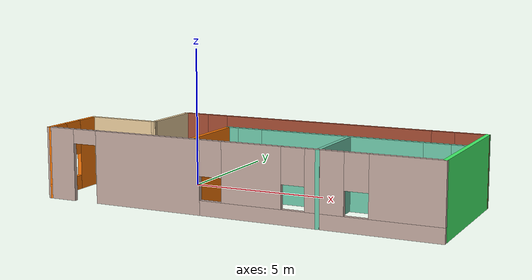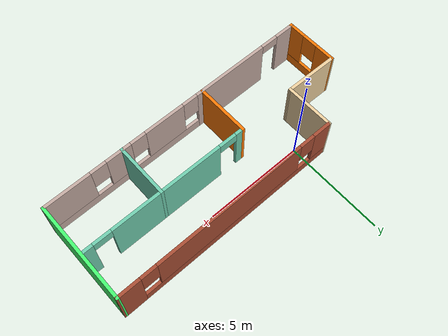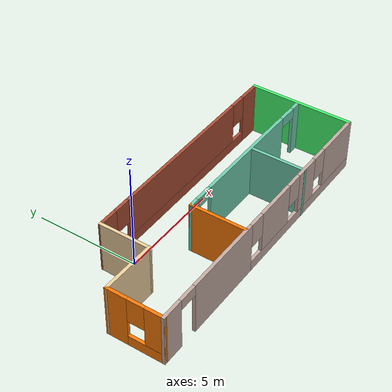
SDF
<?xml version='1.0'?>
<sdf version='1.6'>
  <model name='New'>
    <pose frame=''>3.48669 -1.57847 0 0 -0 0</pose>
    <link name='Wall_0'>
      <pose frame=''>-6.99669 -1.17687 0 0 0 -1.5708</pose>
      <visual name='Wall_0_Visual_0'>
        <pose frame=''>-0.859523 0 1.25 0 -0 0</pose>
        <geometry>
          <box>
            <size>1.03095 0.15 2.5</size>
          </box>
        </geometry>
        <material>
          <script>
            <uri>file://media/materials/scripts/gazebo.material</uri>
            <name>Gazebo/Grey</name>
          </script>
          <ambient>0.996078 0.47451 0.0196078 1</ambient>
        </material>
        <meta>
          <layer>0</layer>
        </meta>
      </visual>
      <collision name='Wall_0_Collision_0'>
        <geometry>
          <box>
            <size>1.03095 0.15 2.5</size>
          </box>
        </geometry>
        <pose frame=''>-0.859523 0 1.25 0 -0 0</pose>
      </collision>
      <visual name='Wall_0_Visual_1'>
        <pose frame=''>0.515477 0 0.25 0 -0 0</pose>
        <geometry>
          <box>
            <size>1.71905 0.15 0.5</size>
          </box>
        </geometry>
        <material>
          <script>
            <uri>file://media/materials/scripts/gazebo.material</uri>
            <name>Gazebo/Grey</name>
          </script>
          <ambient>0.996078 0.47451 0.0196078 1</ambient>
        </material>
        <meta>
          <layer>0</layer>
        </meta>
      </visual>
      <collision name='Wall_0_Collision_1'>
        <geometry>
          <box>
            <size>1.71905 0.15 0.5</size>
          </box>
        </geometry>
        <pose frame=''>0.515477 0 0.25 0 -0 0</pose>
      </collision>
      <visual name='Wall_0_Visual_2'>
        <pose frame=''>0.915477 0 1.5 0 -0 0</pose>
        <geometry>
          <box>
            <size>0.919047 0.15 2</size>
          </box>
        </geometry>
        <material>
          <script>
            <uri>file://media/materials/scripts/gazebo.material</uri>
            <name>Gazebo/Grey</name>
          </script>
          <ambient>0.996078 0.47451 0.0196078 1</ambient>
        </material>
        <meta>
          <layer>0</layer>
        </meta>
      </visual>
      <collision name='Wall_0_Collision_2'>
        <geometry>
          <box>
            <size>0.919047 0.15 2</size>
          </box>
        </geometry>
        <pose frame=''>0.915477 0 1.5 0 -0 0</pose>
      </collision>
      <visual name='Wall_0_Visual_3'>
        <pose frame=''>0.055953 0 1.9 0 -0 0</pose>
        <geometry>
          <box>
            <size>0.8 0.15 1.2</size>
          </box>
        </geometry>
        <material>
          <script>
            <uri>file://media/materials/scripts/gazebo.material</uri>
            <name>Gazebo/Grey</name>
          </script>
          <ambient>0.996078 0.47451 0.0196078 1</ambient>
        </material>
        <meta>
          <layer>0</layer>
        </meta>
      </visual>
      <collision name='Wall_0_Collision_3'>
        <geometry>
          <box>
            <size>0.8 0.15 1.2</size>
          </box>
        </geometry>
        <pose frame=''>0.055953 0 1.9 0 -0 0</pose>
      </collision>
    </link>
    <link name='Wall_1'>
      <pose frame=''>4e-06 -2.4337 0 0 -0 0.00617</pose>
      <visual name='Wall_1_Visual_0'>
        <pose frame=''>-6.52931 0 1.25 0 -0 0</pose>
        <geometry>
          <box>
            <size>1.08587 0.15 2.5</size>
          </box>
        </geometry>
        <material>
          <script>
            <uri>file://media/materials/scripts/gazebo.material</uri>
            <name>Gazebo/Grey</name>
          </script>
          <ambient>0.760784 0.662745 0.627451 1</ambient>
        </material>
        <meta>
          <layer>0</layer>
        </meta>
      </visual>
      <collision name='Wall_1_Collision_0'>
        <geometry>
          <box>
            <size>1.08587 0.15 2.5</size>
          </box>
        </geometry>
        <pose frame=''>-6.52931 0 1.25 0 -0 0</pose>
      </collision>
      <visual name='Wall_1_Visual_1'>
        <pose frame=''>-3.09631 0 1.25 0 -0 0</pose>
        <geometry>
          <box>
            <size>3.98014 0.15 2.5</size>
          </box>
        </geometry>
        <material>
          <script>
            <uri>file://media/materials/scripts/gazebo.material</uri>
            <name>Gazebo/Grey</name>
          </script>
          <ambient>0.760784 0.662745 0.627451 1</ambient>
        </material>
        <meta>
          <layer>0</layer>
        </meta>
      </visual>
      <collision name='Wall_1_Collision_1'>
        <geometry>
          <box>
            <size>3.98014 0.15 2.5</size>
          </box>
        </geometry>
        <pose frame=''>-3.09631 0 1.25 0 -0 0</pose>
      </collision>
      <visual name='Wall_1_Visual_2'>
        <pose frame=''>2.983 0 0.25 0 -0 0</pose>
        <geometry>
          <box>
            <size>8.17848 0.15 0.5</size>
          </box>
        </geometry>
        <material>
          <script>
            <uri>file://media/materials/scripts/gazebo.material</uri>
            <name>Gazebo/Grey</name>
          </script>
          <ambient>0.760784 0.662745 0.627451 1</ambient>
        </material>
        <meta>
          <layer>0</layer>
        </meta>
      </visual>
      <collision name='Wall_1_Collision_2'>
        <geometry>
          <box>
            <size>8.17848 0.15 0.5</size>
          </box>
        </geometry>
        <pose frame=''>2.983 0 0.25 0 -0 0</pose>
      </collision>
      <visual name='Wall_1_Visual_3'>
        <pose frame=''>0.739938 0 1.5 0 -0 0</pose>
        <geometry>
          <box>
            <size>2.09235 0.15 2</size>
          </box>
        </geometry>
        <material>
          <script>
            <uri>file://media/materials/scripts/gazebo.material</uri>
            <name>Gazebo/Grey</name>
          </script>
          <ambient>0.760784 0.662745 0.627451 1</ambient>
        </material>
        <meta>
          <layer>0</layer>
        </meta>
      </visual>
      <collision name='Wall_1_Collision_3'>
        <geometry>
          <box>
            <size>2.09235 0.15 2</size>
          </box>
        </geometry>
        <pose frame=''>0.739938 0 1.5 0 -0 0</pose>
      </collision>
      <visual name='Wall_1_Visual_4'>
        <pose frame=''>3.23501 0 1.5 0 -0 0</pose>
        <geometry>
          <box>
            <size>1.29778 0.15 2</size>
          </box>
        </geometry>
        <material>
          <script>
            <uri>file://media/materials/scripts/gazebo.material</uri>
            <name>Gazebo/Grey</name>
          </script>
          <ambient>0.760784 0.662745 0.627451 1</ambient>
        </material>
        <meta>
          <layer>0</layer>
        </meta>
      </visual>
      <collision name='Wall_1_Collision_4'>
        <geometry>
          <box>
            <size>1.29778 0.15 2</size>
          </box>
        </geometry>
        <pose frame=''>3.23501 0 1.5 0 -0 0</pose>
      </collision>
      <visual name='Wall_1_Visual_5'>
        <pose frame=''>5.87807 0 1.5 0 -0 0</pose>
        <geometry>
          <box>
            <size>2.38834 0.15 2</size>
          </box>
        </geometry>
        <material>
          <script>
            <uri>file://media/materials/scripts/gazebo.material</uri>
            <name>Gazebo/Grey</name>
          </script>
          <ambient>0.760784 0.662745 0.627451 1</ambient>
        </material>
        <meta>
          <layer>0</layer>
        </meta>
      </visual>
      <collision name='Wall_1_Collision_5'>
        <geometry>
          <box>
            <size>2.38834 0.15 2</size>
          </box>
        </geometry>
        <pose frame=''>5.87807 0 1.5 0 -0 0</pose>
      </collision>
      <visual name='Wall_1_Visual_6'>
        <pose frame=''>-0.70624 0 1.9 0 -0 0</pose>
        <geometry>
          <box>
            <size>0.8 0.15 1.2</size>
          </box>
        </geometry>
        <material>
          <script>
            <uri>file://media/materials/scripts/gazebo.material</uri>
            <name>Gazebo/Grey</name>
          </script>
          <ambient>0.760784 0.662745 0.627451 1</ambient>
        </material>
        <meta>
          <layer>0</layer>
        </meta>
      </visual>
      <collision name='Wall_1_Collision_6'>
        <geometry>
          <box>
            <size>0.8 0.15 1.2</size>
          </box>
        </geometry>
        <pose frame=''>-0.70624 0 1.9 0 -0 0</pose>
      </collision>
      <visual name='Wall_1_Visual_7'>
        <pose frame=''>2.18612 0 1.9 0 -0 0</pose>
        <geometry>
          <box>
            <size>0.8 0.15 1.2</size>
          </box>
        </geometry>
        <material>
          <script>
            <uri>file://media/materials/scripts/gazebo.material</uri>
            <name>Gazebo/Grey</name>
          </script>
          <ambient>0.760784 0.662745 0.627451 1</ambient>
        </material>
        <meta>
          <layer>0</layer>
        </meta>
      </visual>
      <collision name='Wall_1_Collision_7'>
        <geometry>
          <box>
            <size>0.8 0.15 1.2</size>
          </box>
        </geometry>
        <pose frame=''>2.18612 0 1.9 0 -0 0</pose>
      </collision>
      <visual name='Wall_1_Visual_8'>
        <pose frame=''>4.2839 0 1.9 0 -0 0</pose>
        <geometry>
          <box>
            <size>0.8 0.15 1.2</size>
          </box>
        </geometry>
        <material>
          <script>
            <uri>file://media/materials/scripts/gazebo.material</uri>
            <name>Gazebo/Grey</name>
          </script>
          <ambient>0.760784 0.662745 0.627451 1</ambient>
        </material>
        <meta>
          <layer>0</layer>
        </meta>
      </visual>
      <collision name='Wall_1_Collision_8'>
        <geometry>
          <box>
            <size>0.8 0.15 1.2</size>
          </box>
        </geometry>
        <pose frame=''>4.2839 0 1.9 0 -0 0</pose>
      </collision>
      <visual name='Wall_1_Visual_9'>
        <pose frame=''>-5.53637 0 2.25 0 -0 0</pose>
        <geometry>
          <box>
            <size>0.9 0.15 0.5</size>
          </box>
        </geometry>
        <material>
          <script>
            <uri>file://media/materials/scripts/gazebo.material</uri>
            <name>Gazebo/Grey</name>
          </script>
          <ambient>0.760784 0.662745 0.627451 1</ambient>
        </material>
        <meta>
          <layer>0</layer>
        </meta>
      </visual>
      <collision name='Wall_1_Collision_9'>
        <geometry>
          <box>
            <size>0.9 0.15 0.5</size>
          </box>
        </geometry>
        <pose frame=''>-5.53637 0 2.25 0 -0 0</pose>
      </collision>
    </link>
    <link name='Wall_11'>
      <collision name='Wall_11_Collision'>
        <geometry>
          <box>
            <size>2.75 0.15 2.5</size>
          </box>
        </geometry>
        <pose frame=''>0 0 1.25 0 -0 0</pose>
      </collision>
      <visual name='Wall_11_Visual'>
        <pose frame=''>0 0 1.25 0 -0 0</pose>
        <geometry>
          <box>
            <size>2.75 0.15 2.5</size>
          </box>
        </geometry>
        <material>
          <script>
            <uri>file://media/materials/scripts/gazebo.material</uri>
            <name>Gazebo/Grey</name>
          </script>
          <ambient>0.435294 0.796078 0.67451 1</ambient>
        </material>
        <meta>
          <layer>0</layer>
        </meta>
      </visual>
      <pose frame=''>3.01459 -1.12215 0 0 0 -1.5708</pose>
    </link>
    <link name='Wall_2'>
      <collision name='Wall_2_Collision'>
        <geometry>
          <box>
            <size>5 0.15 2.5</size>
          </box>
        </geometry>
        <pose frame=''>0 0 1.25 0 -0 0</pose>
      </collision>
      <visual name='Wall_2_Visual'>
        <pose frame=''>0 0 1.25 0 -0 0</pose>
        <geometry>
          <box>
            <size>5 0.15 2.5</size>
          </box>
        </geometry>
        <material>
          <script>
            <uri>file://media/materials/scripts/gazebo.material</uri>
            <name>Gazebo/Grey</name>
          </script>
          <ambient>0.270588 1 0.439216 1</ambient>
        </material>
        <meta>
          <layer>0</layer>
        </meta>
      </visual>
      <pose frame=''>6.9967 0.052103 0 0 -0 1.5708</pose>
    </link>
    <link name='Wall_3'>
      <pose frame=''>1.3 2.45979 0 0 0 -3.13855</pose>
      <visual name='Wall_3_Visual_0'>
        <pose frame=''>-5.18658 0 1.25 0 -0 0</pose>
        <geometry>
          <box>
            <size>1.17029 0.15 2.5</size>
          </box>
        </geometry>
        <material>
          <script>
            <uri>file://media/materials/scripts/gazebo.material</uri>
            <name>Gazebo/Bricks</name>
          </script>
          <ambient>1 1 1 1</ambient>
        </material>
        <meta>
          <layer>0</layer>
        </meta>
      </visual>
      <collision name='Wall_3_Collision_0'>
        <geometry>
          <box>
            <size>1.17029 0.15 2.5</size>
          </box>
        </geometry>
        <pose frame=''>-5.18658 0 1.25 0 -0 0</pose>
      </collision>
      <visual name='Wall_3_Visual_1'>
        <pose frame=''>0.585144 0 0.25 0 -0 0</pose>
        <geometry>
          <box>
            <size>10.3732 0.15 0.5</size>
          </box>
        </geometry>
        <material>
          <script>
            <uri>file://media/materials/scripts/gazebo.material</uri>
            <name>Gazebo/Bricks</name>
          </script>
          <ambient>1 1 1 1</ambient>
        </material>
        <meta>
          <layer>0</layer>
        </meta>
      </visual>
      <collision name='Wall_3_Collision_1'>
        <geometry>
          <box>
            <size>10.3732 0.15 0.5</size>
          </box>
        </geometry>
        <pose frame=''>0.585144 0 0.25 0 -0 0</pose>
      </collision>
      <visual name='Wall_3_Visual_2'>
        <pose frame=''>0.083821 0 1.5 0 -0 0</pose>
        <geometry>
          <box>
            <size>7.77051 0.15 2</size>
          </box>
        </geometry>
        <material>
          <script>
            <uri>file://media/materials/scripts/gazebo.material</uri>
            <name>Gazebo/Bricks</name>
          </script>
          <ambient>1 1 1 1</ambient>
        </material>
        <meta>
          <layer>0</layer>
        </meta>
      </visual>
      <collision name='Wall_3_Collision_2'>
        <geometry>
          <box>
            <size>7.77051 0.15 2</size>
          </box>
        </geometry>
        <pose frame=''>0.083821 0 1.5 0 -0 0</pose>
      </collision>
      <visual name='Wall_3_Visual_3'>
        <pose frame=''>5.2704 0 1.5 0 -0 0</pose>
        <geometry>
          <box>
            <size>1.00265 0.15 2</size>
          </box>
        </geometry>
        <material>
          <script>
            <uri>file://media/materials/scripts/gazebo.material</uri>
            <name>Gazebo/Bricks</name>
          </script>
          <ambient>1 1 1 1</ambient>
        </material>
        <meta>
          <layer>0</layer>
        </meta>
      </visual>
      <collision name='Wall_3_Collision_3'>
        <geometry>
          <box>
            <size>1.00265 0.15 2</size>
          </box>
        </geometry>
        <pose frame=''>5.2704 0 1.5 0 -0 0</pose>
      </collision>
      <visual name='Wall_3_Visual_4'>
        <pose frame=''>-4.20143 0 1.9 0 -0 0</pose>
        <geometry>
          <box>
            <size>0.8 0.15 1.2</size>
          </box>
        </geometry>
        <material>
          <script>
            <uri>file://media/materials/scripts/gazebo.material</uri>
            <name>Gazebo/Bricks</name>
          </script>
          <ambient>1 1 1 1</ambient>
        </material>
        <meta>
          <layer>0</layer>
        </meta>
      </visual>
      <collision name='Wall_3_Collision_4'>
        <geometry>
          <box>
            <size>0.8 0.15 1.2</size>
          </box>
        </geometry>
        <pose frame=''>-4.20143 0 1.9 0 -0 0</pose>
      </collision>
      <visual name='Wall_3_Visual_5'>
        <pose frame=''>4.36908 0 1.9 0 -0 0</pose>
        <geometry>
          <box>
            <size>0.8 0.15 1.2</size>
          </box>
        </geometry>
        <material>
          <script>
            <uri>file://media/materials/scripts/gazebo.material</uri>
            <name>Gazebo/Bricks</name>
          </script>
          <ambient>1 1 1 1</ambient>
        </material>
        <meta>
          <layer>0</layer>
        </meta>
      </visual>
      <collision name='Wall_3_Collision_5'>
        <geometry>
          <box>
            <size>0.8 0.15 1.2</size>
          </box>
        </geometry>
        <pose frame=''>4.36908 0 1.9 0 -0 0</pose>
      </collision>
    </link>
    <link name='Wall_4'>
      <collision name='Wall_4_Collision'>
        <geometry>
          <box>
            <size>2.5 0.15 2.5</size>
          </box>
        </geometry>
        <pose frame=''>0 0 1.25 0 -0 0</pose>
      </collision>
      <visual name='Wall_4_Visual'>
        <pose frame=''>0 0 1.25 0 -0 0</pose>
        <geometry>
          <box>
            <size>2.5 0.15 2.5</size>
          </box>
        </geometry>
        <material>
          <script>
            <uri>file://media/materials/scripts/gazebo.material</uri>
            <name>Gazebo/Grey</name>
          </script>
          <ambient>0.921569 0.807843 0.615686 1</ambient>
        </material>
        <meta>
          <layer>0</layer>
        </meta>
      </visual>
      <pose frame=''>-4.39669 1.26747 0 0 0 -1.5708</pose>
    </link>
    <link name='Wall_5'>
      <collision name='Wall_5_Collision'>
        <geometry>
          <box>
            <size>2.75018 0.15 2.5</size>
          </box>
        </geometry>
        <pose frame=''>0 0 1.25 0 -0 0</pose>
      </collision>
      <visual name='Wall_5_Visual'>
        <pose frame=''>0 0 1.25 0 -0 0</pose>
        <geometry>
          <box>
            <size>2.75018 0.15 2.5</size>
          </box>
        </geometry>
        <material>
          <script>
            <uri>file://media/materials/scripts/gazebo.material</uri>
            <name>Gazebo/Grey</name>
          </script>
          <ambient>0.921569 0.807843 0.615686 1</ambient>
        </material>
        <meta>
          <layer>0</layer>
        </meta>
      </visual>
      <pose frame=''>-5.69669 0.1078 0 0 -0 3.1298</pose>
    </link>
    <link name='Wall_7'>
      <collision name='Wall_7_Collision'>
        <geometry>
          <box>
            <size>2.75 0.15 2.5</size>
          </box>
        </geometry>
        <pose frame=''>0 0 1.25 0 -0 0</pose>
      </collision>
      <visual name='Wall_7_Visual'>
        <pose frame=''>0 0 1.25 0 -0 0</pose>
        <geometry>
          <box>
            <size>2.75 0.15 2.5</size>
          </box>
        </geometry>
        <material>
          <script>
            <uri>file://media/materials/scripts/gazebo.material</uri>
            <name>Gazebo/Grey</name>
          </script>
          <ambient>0.996078 0.47451 0.0196078 1</ambient>
        </material>
        <meta>
          <layer>0</layer>
        </meta>
      </visual>
      <pose frame=''>-1.44664 -1.12215 0 0 0 -1.5708</pose>
    </link>
    <link name='Wall_9'>
      <pose frame=''>2.72836 0.177847 0 0 -0 0</pose>
      <visual name='Wall_9_Visual_0'>
        <pose frame=''>-4.00548 0 1.25 0 -0 0</pose>
        <geometry>
          <box>
            <size>0.489033 0.15 2.5</size>
          </box>
        </geometry>
        <material>
          <script>
            <uri>file://media/materials/scripts/gazebo.material</uri>
            <name>Gazebo/Grey</name>
          </script>
          <ambient>0.435294 0.796078 0.67451 1</ambient>
        </material>
        <meta>
          <layer>0</layer>
        </meta>
      </visual>
      <collision name='Wall_9_Collision_0'>
        <geometry>
          <box>
            <size>0.489033 0.15 2.5</size>
          </box>
        </geometry>
        <pose frame=''>-4.00548 0 1.25 0 -0 0</pose>
      </collision>
      <visual name='Wall_9_Visual_1'>
        <pose frame=''>-0.02235 0 1.25 0 -0 0</pose>
        <geometry>
          <box>
            <size>5.67723 0.15 2.5</size>
          </box>
        </geometry>
        <material>
          <script>
            <uri>file://media/materials/scripts/gazebo.material</uri>
            <name>Gazebo/Grey</name>
          </script>
          <ambient>0.435294 0.796078 0.67451 1</ambient>
        </material>
        <meta>
          <layer>0</layer>
        </meta>
      </visual>
      <collision name='Wall_9_Collision_1'>
        <geometry>
          <box>
            <size>5.67723 0.15 2.5</size>
          </box>
        </geometry>
        <pose frame=''>-0.02235 0 1.25 0 -0 0</pose>
      </collision>
      <visual name='Wall_9_Visual_2'>
        <pose frame=''>3.98313 0 1.25 0 -0 0</pose>
        <geometry>
          <box>
            <size>0.533733 0.15 2.5</size>
          </box>
        </geometry>
        <material>
          <script>
            <uri>file://media/materials/scripts/gazebo.material</uri>
            <name>Gazebo/Grey</name>
          </script>
          <ambient>0.435294 0.796078 0.67451 1</ambient>
        </material>
        <meta>
          <layer>0</layer>
        </meta>
      </visual>
      <collision name='Wall_9_Collision_2'>
        <geometry>
          <box>
            <size>0.533733 0.15 2.5</size>
          </box>
        </geometry>
        <pose frame=''>3.98313 0 1.25 0 -0 0</pose>
      </collision>
      <visual name='Wall_9_Visual_3'>
        <pose frame=''>-3.31097 0 2.25 0 -0 0</pose>
        <geometry>
          <box>
            <size>0.9 0.15 0.5</size>
          </box>
        </geometry>
        <material>
          <script>
            <uri>file://media/materials/scripts/gazebo.material</uri>
            <name>Gazebo/Grey</name>
          </script>
          <ambient>0.435294 0.796078 0.67451 1</ambient>
        </material>
        <meta>
          <layer>0</layer>
        </meta>
      </visual>
      <collision name='Wall_9_Collision_3'>
        <geometry>
          <box>
            <size>0.9 0.15 0.5</size>
          </box>
        </geometry>
        <pose frame=''>-3.31097 0 2.25 0 -0 0</pose>
      </collision>
      <visual name='Wall_9_Visual_4'>
        <pose frame=''>3.26627 0 2.25 0 -0 0</pose>
        <geometry>
          <box>
            <size>0.9 0.15 0.5</size>
          </box>
        </geometry>
        <material>
          <script>
            <uri>file://media/materials/scripts/gazebo.material</uri>
            <name>Gazebo/Grey</name>
          </script>
          <ambient>0.435294 0.796078 0.67451 1</ambient>
        </material>
        <meta>
          <layer>0</layer>
        </meta>
      </visual>
      <collision name='Wall_9_Collision_4'>
        <geometry>
          <box>
            <size>0.9 0.15 0.5</size>
          </box>
        </geometry>
        <pose frame=''>3.26627 0 2.25 0 -0 0</pose>
      </collision>
    </link>
    <static>1</static>
  </model>
</sdf>
